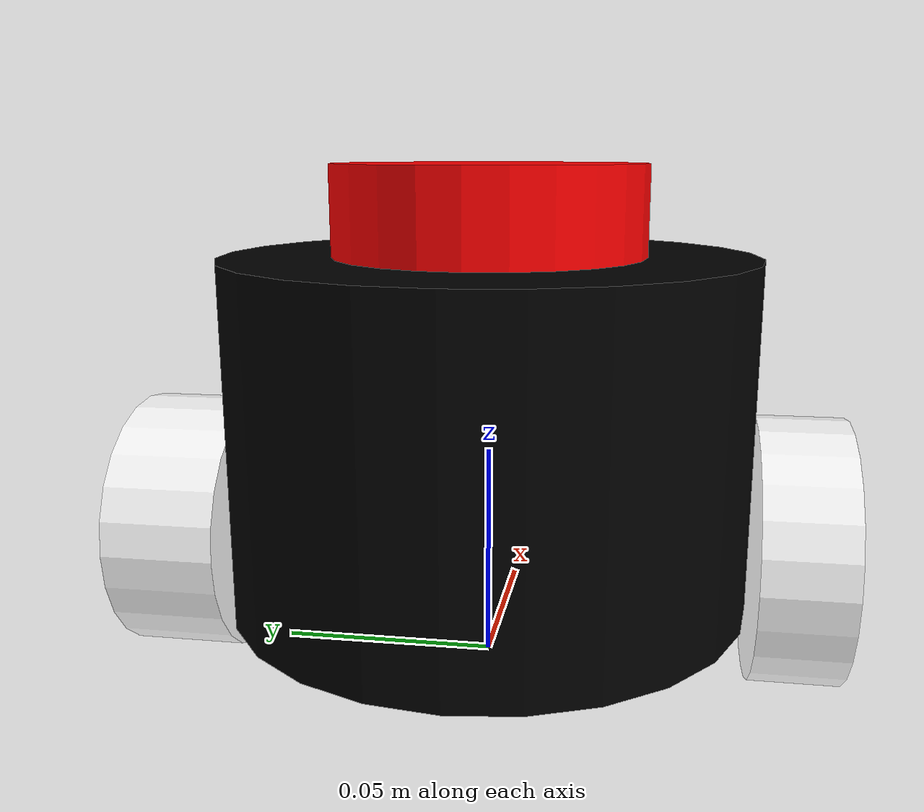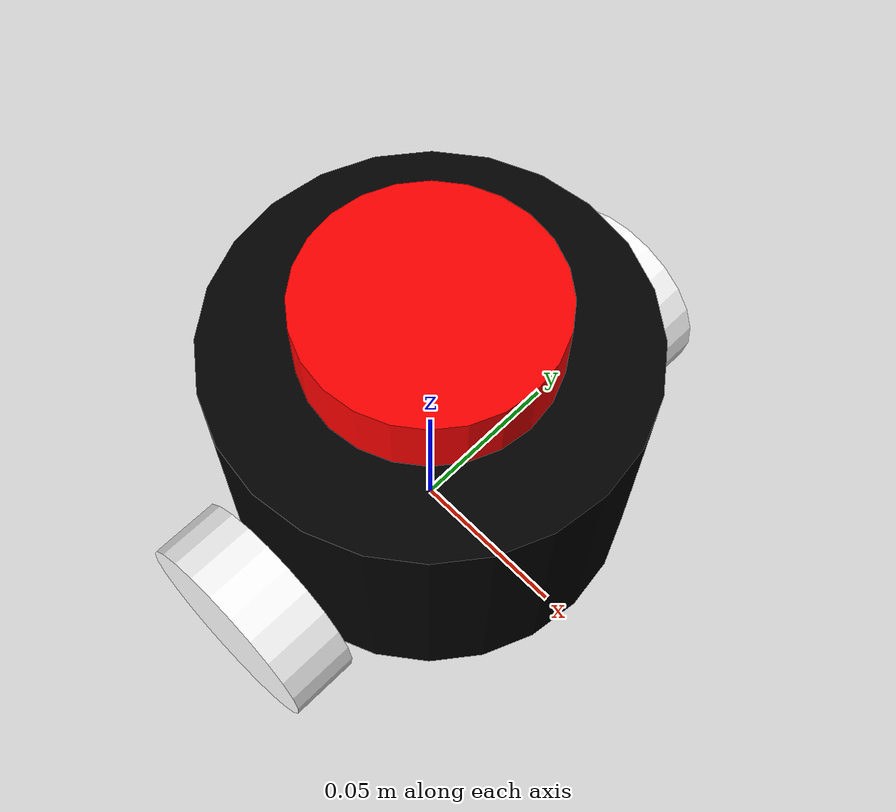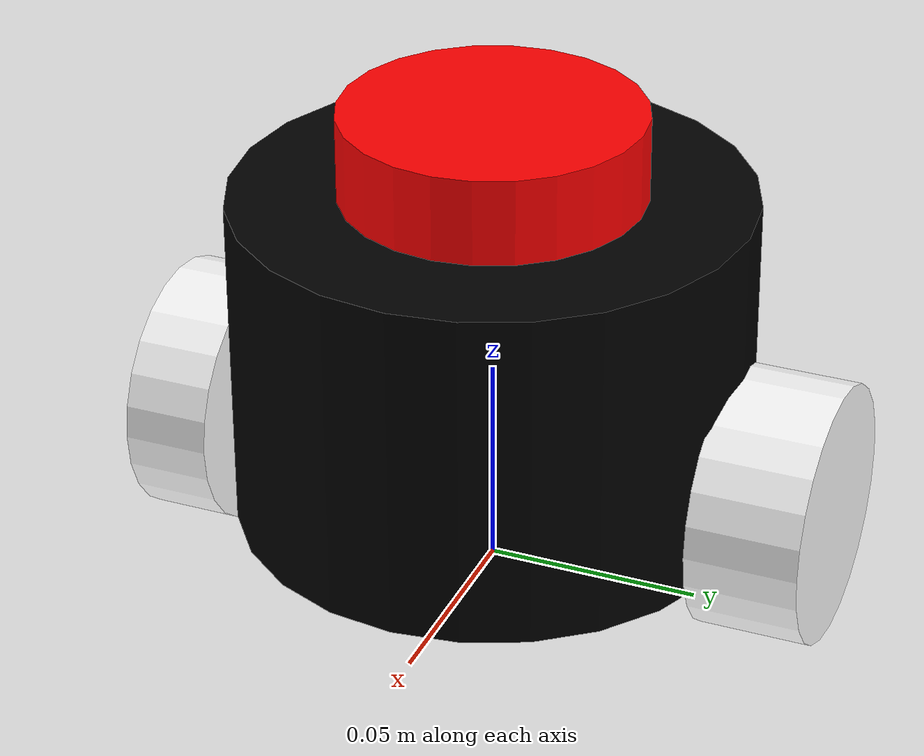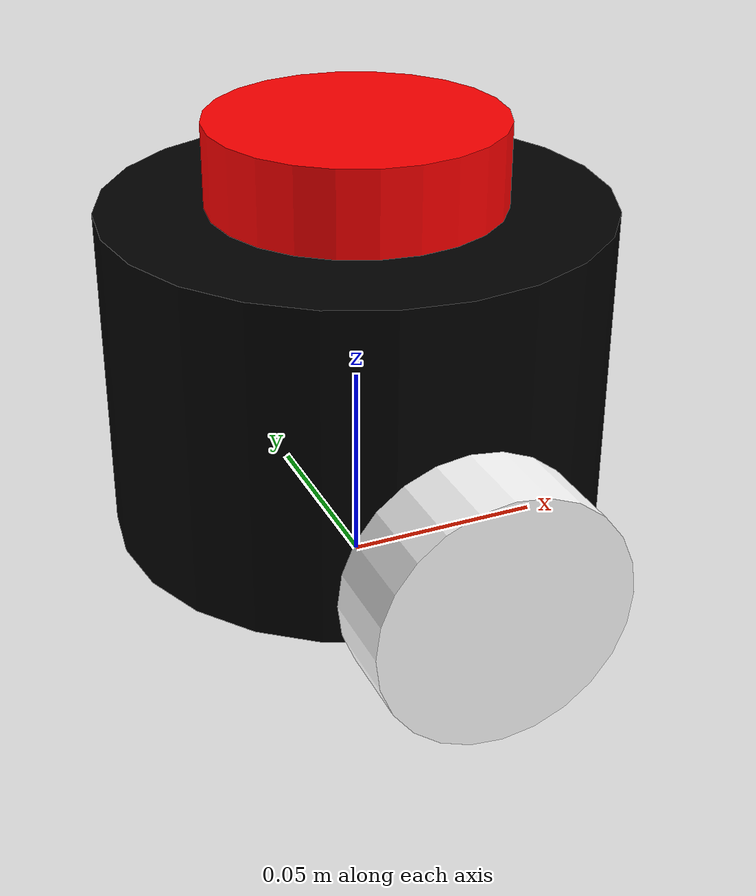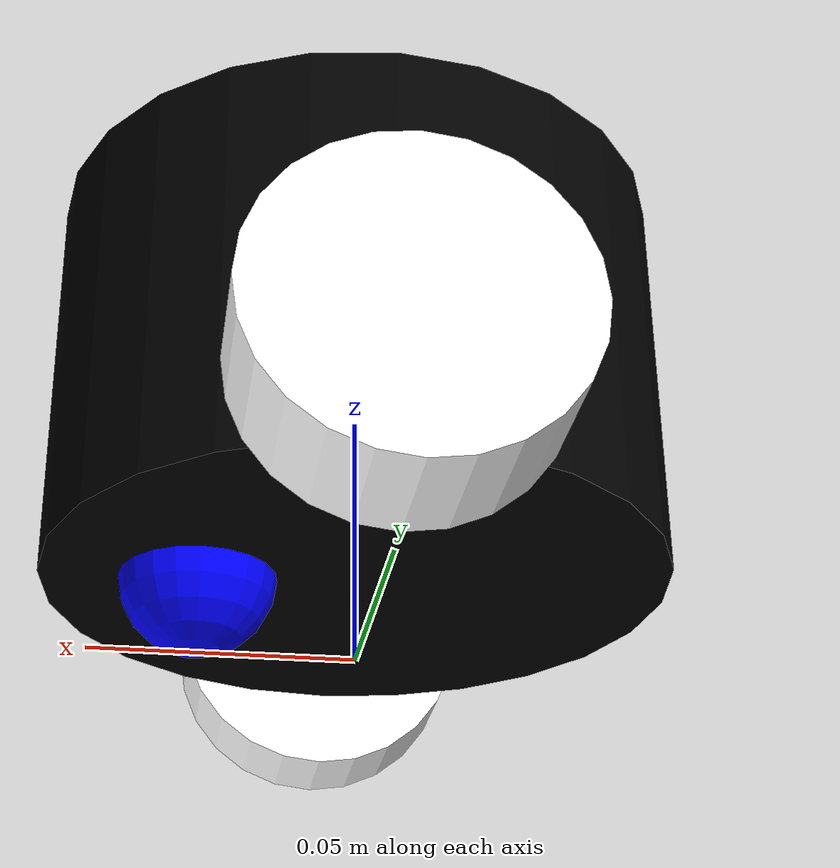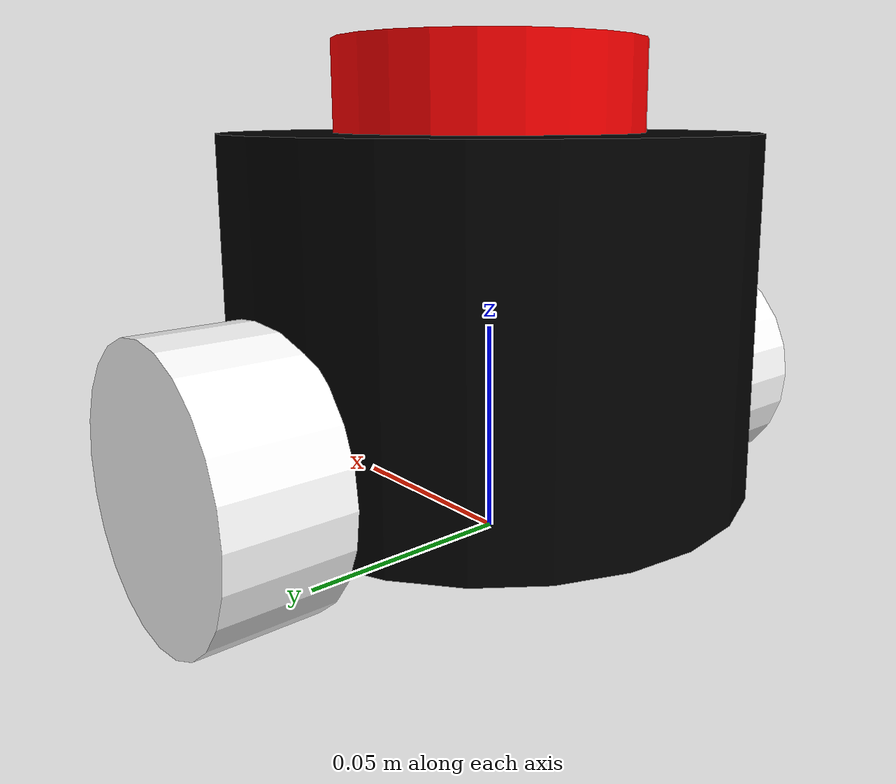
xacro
<?xml version="1.0"?>
<robot xmlns:xacro="http://www.ros.org/wiki/xacro" name="burgerbot_rev1">

    <xacro:include filename="color.xacro" />
    <xacro:include filename="robot_dimensions.xacro" />
    <xacro:include filename="lidar.xacro" />
    <xacro:include filename="interia_macro.xacro"/>
    <xacro:include filename="gazebo_control.xacro"/>

    <!-- BASE LINK -->
    <link name="base_footprint"/>

    <link name="base_link"/>

    <!-- BASE FOOTPRINT LINK-->
    <joint name="base_footprint_joint" type="fixed">
        <parent link="base_link"/>
        <child link="base_footprint"/>
        <origin xyz="0 0 0" rpy="0 0 0"/>
    </joint>

    <!--CHASSIS LINK    (check the joint & link origin after adding wheels) -->
    <joint name="chassis_joint" type="fixed">
        <parent link="base_link"/>
        <child link="chassis_link"/>
        <origin xyz="0 0 ${wheel_radius / 2.0}"/>
    </joint>

    <link name="chassis_link">
        <visual>
            <origin xyz="0 0 ${body_length/2}"/>
            <geometry>
                <cylinder radius="${body_diameter / 2.0}" length="${body_length}"/>
            </geometry>
            <material name="black"/>
        </visual>
        <collision>
            <origin xyz="0 0 ${body_length/2}"/>
            <geometry>
                <cylinder radius="${body_diameter / 2.0}" length="${body_length}"/>
            </geometry>
        </collision>
        <xacro:inertial_box mass="0.5" x="${body_radius}" y="${body_radius}" z="${body_length}">
            <origin xyz="${body_radius/2} 0 ${body_length/2}" rpy="0 0 0"/>
        </xacro:inertial_box>
    </link>

    <gazebo reference="chassis">
        <material>Gazebo/Orange</material>
    </gazebo>

    <!-- LEFT WHEEL LINK -->
    <joint name="left_wheel_joint" type="continuous">
        <parent link="base_link"/>
        <child link="left_wheel"/>
        <origin xyz="0 0.07 ${wheel_radius}" rpy="-${pi/2} 0 0"/>
        <axis xyz="0 0 1"/>
    </joint>

    <link name="left_wheel">
        <visual>
            <geometry>
                <cylinder radius="${wheel_radius}" length="${wheel_thickness}"/>
            </geometry>
            <material name="white"/>
        </visual>
        <collision>
            <geometry>
                <cylinder radius="${wheel_radius}" length="${wheel_thickness}"/> <!-- 1cm thickness -->
            </geometry>
        </collision>
        <xacro:inertial_cylinder mass="${wheel_mass}" length="${wheel_thickness}" radius="${wheel_radius}">
            <origin xyz="0 0 0" rpy="0 0 0"/>
        </xacro:inertial_cylinder>
    </link>

    <gazebo reference="left_wheel">
        <material>Gazebo/Blue</material>
    </gazebo>

    <!-- RIGHT WHEEL LINK -->
    <joint name="right_wheel_joint" type="continuous">
        <parent link="base_link"/>
        <child link="right_wheel"/>
        <origin xyz="0 -0.07 ${wheel_radius}" rpy="${pi/2} 0 0"/>
        <axis xyz="0 0 -1"/>
    </joint>

    <link name="right_wheel">
        <visual>
            <geometry>
                <cylinder radius="${wheel_radius}" length="0.02"/>
            </geometry>
            <material name="white"/>
        </visual>
        <collision>
            <geometry>
                <cylinder radius="${wheel_radius}" length="0.02"/>
            </geometry>
        </collision>
        <xacro:inertial_cylinder mass="${wheel_mass}" length="${wheel_thickness}" radius="${wheel_radius}">
            <origin xyz="0 0 0" rpy="0 0 0"/>
        </xacro:inertial_cylinder>
    </link>

    <gazebo reference="right_wheel">
        <material>Gazebo/Blue</material>
    </gazebo>

    <!-- CASTER WHEEL LINK -->
    <joint name="caster_wheel_joint" type="fixed">
        <parent link="chassis_link"/>
        <child link="caster_wheel_link"/>
        <origin xyz="${caster_distance} 0 0"/>
    </joint>

    <link name="caster_wheel_link">
        <visual>
            <geometry>
                <sphere radius="${caster_radius}"/>
            </geometry>
            <material name="blue"/>
        </visual>
        <collision>
            <geometry>
                <sphere radius="${caster_radius}"/>
            </geometry>
        </collision>
        <xacro:inertial_sphere mass="${caster_wheel_mass}" radius="${caster_radius}">
            <origin xyz="0 0 0" rpy="0 0 0"/>
        </xacro:inertial_sphere>
    </link>

    <gazebo reference="caster_wheel">
        <material>Gazebo/Blue</material>
        <mu1 value="0.001"/>
        <mu2 value="0.001"/>
    </gazebo>

</robot>

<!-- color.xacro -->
<robot xmlns:xacro="http://www.ros.org/wiki/xacro">

    <material name="black">
        <color rgba="0 0 0 1"/>
    </material>

    <material name="white">
        <color rgba="1 1 1 1"/>
    </material>

    <material name="red">
        <color rgba="1 0 0 1"/>
    </material>

    <material name="blue">
        <color rgba="0 0 1 1"/>
    </material>

</robot>

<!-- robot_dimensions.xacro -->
<robot xmlns:xacro="http://www.ros.org/wiki/xacro">
  <!-- Body dimensions (in meters) -->
  <!-- Body is a cylinder: diameter = 120mm (0.12 m), length = 80mm (0.08 m) -->
  <xacro:property name="body_diameter" value="0.12"/>
  <xacro:property name="body_length" value="0.08"/>
  <xacro:property name="body_radius" value="${body_diameter / 2.0}"/>

  <!-- Wheel dimensions -->
  <!-- Wheel diameter = 60mm (0.06 m); radius is half of that -->
  <xacro:property name="wheel_diameter" value="0.06"/>
  <xacro:property name="wheel_radius" value="${wheel_diameter / 2.0}"/>
  <!-- Distance between the centers of the left and right wheels = 150mm (0.15 m) -->
  <xacro:property name="wheel_separation" value="0.15"/>
  <xacro:property name="wheel_mass" value="0.05"/>
  <xacro:property name="wheel_thickness" value="0.026"/>
  <xacro:property name="wheel_offset_x" value="0.226"/>
  <xacro:property name="wheel_offset_y" value="0.1485"/>
  <xacro:property name="wheel_offset_z" value="0.01"/>

  <!-- Lidar dimensions -->
  <!-- Represent the lidar as a cylinder with diameter = 70mm (0.07 m) -->
  <xacro:property name="lidar_diameter" value="0.07"/>
  <!-- Arbitrarily set a height for the lidar cylinder, e.g. 20mm (0.02 m) -->
  <xacro:property name="lidar_height" value="0.02"/>
  <!-- The lidar is mounted on the top of the body but offset by 30mm (0.03 m) down from the top -->
  <xacro:property name="lidar_offset_from_top" value="0.03"/>

  <!-- Caster wheel dimensions -->
  <xacro:property name="caster_distance" value="0.03"/>
  <!-- caster_wheel_radius changed to caster_radius-->
  <xacro:property name="caster_radius" value="0.015"/>
  <xacro:property name="caster_wheel_mass" value="0.01"/>
  <xacro:property name="caster_wheel_offset_x" value="0.075"/>
    <xacro:property name="caster_wheel_offset_z" value="${wheel_offset_z - wheel_radius + caster_radius}"/>
</robot>

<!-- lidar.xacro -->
<robot xmlns:xacro="http://www.ros.org/wiki/xacro" >

    <joint name="laser_joint" type="fixed">
        <parent link="chassis_link"/>
        <child link="laser_link"/>
        <origin xyz="0 0 0.09" rpy="0 0 0"/>
    </joint>

    <link name="laser_link">
        <visual>
            <geometry>
                <cylinder radius="${lidar_diameter/2.0}" length="${lidar_height}"/>
            </geometry>
            <material name="red"/>
        </visual>
        <collision>
            <geometry>
                <cylinder radius="${lidar_diameter/2.0}" length="${lidar_height}"/>
            </geometry>
        </collision>
    </link>

</robot>
